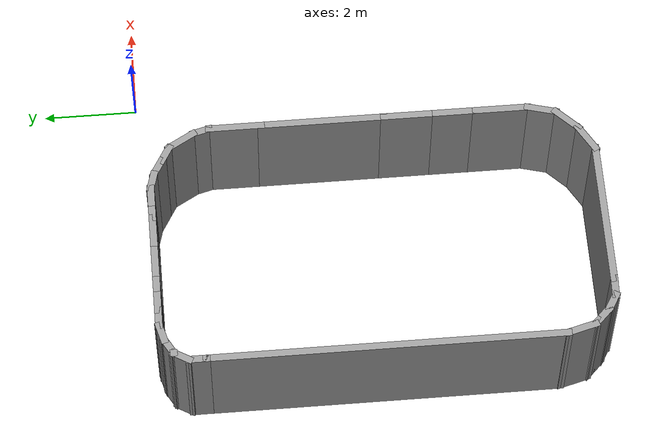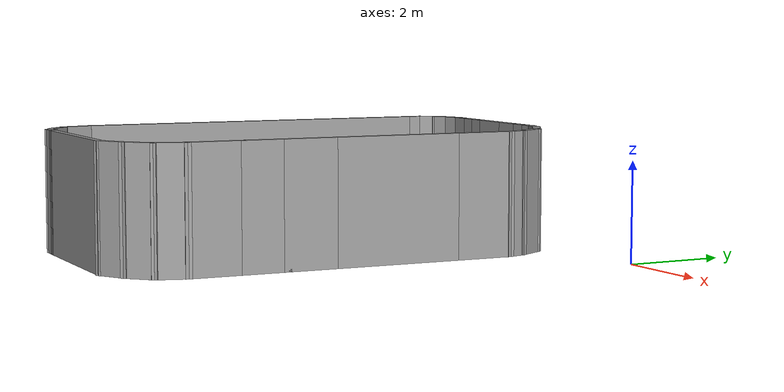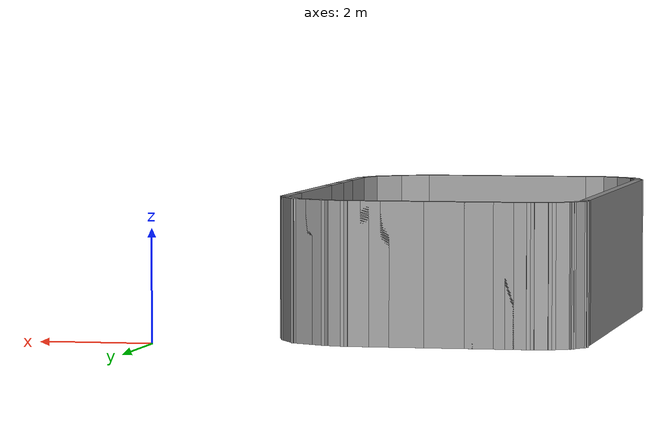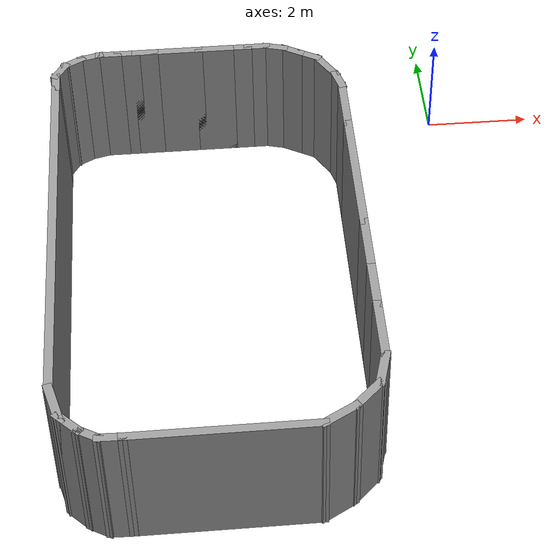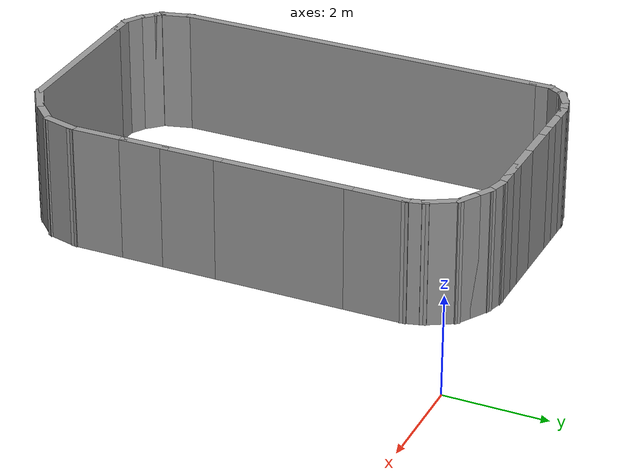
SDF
<?xml version='1.0'?>
<sdf version='1.7'>
  <model name='Untitled3'>
    <pose>-3.72977 -4.86258 0 0 -0 0</pose>
    <link name='Wall_100'>
      <collision name='Wall_100_Collision'>
        <geometry>
          <box>
            <size>0.5 0.15 2.5</size>
          </box>
        </geometry>
        <pose>0 0 1.25 0 -0 0</pose>
      </collision>
      <visual name='Wall_100_Visual'>
        <pose>0 0 1.25 0 -0 0</pose>
        <geometry>
          <box>
            <size>0.5 0.15 2.5</size>
          </box>
        </geometry>
        <material>
          <script>
            <uri>file://media/materials/scripts/gazebo.material</uri>
            <name>Gazebo/Grey</name>
          </script>
          <ambient>1 1 1 1</ambient>
        </material>
        <meta>
          <layer>0</layer>
        </meta>
      </visual>
      <pose>-3.00228 -4.66198 0 0 -0 -0.523599</pose>
    </link>
    <link name='Wall_101'>
      <collision name='Wall_101_Collision'>
        <geometry>
          <box>
            <size>0.525443 0.15 2.5</size>
          </box>
        </geometry>
        <pose>0 0 1.25 0 -0 0</pose>
      </collision>
      <visual name='Wall_101_Visual'>
        <pose>0 0 1.25 0 -0 0</pose>
        <geometry>
          <box>
            <size>0.525443 0.15 2.5</size>
          </box>
        </geometry>
        <material>
          <script>
            <uri>file://media/materials/scripts/gazebo.material</uri>
            <name>Gazebo/Grey</name>
          </script>
          <ambient>1 1 1 1</ambient>
        </material>
        <meta>
          <layer>0</layer>
        </meta>
      </visual>
      <pose>-2.66308 -4.7548 0 0 -0 -0.028361</pose>
    </link>
    <link name='Wall_60'>
      <collision name='Wall_60_Collision'>
        <geometry>
          <box>
            <size>3.25 0.15 2.5</size>
          </box>
        </geometry>
        <pose>0 0 1.25 0 -0 0</pose>
      </collision>
      <visual name='Wall_60_Visual'>
        <pose>0 0 1.25 0 -0 0</pose>
        <geometry>
          <box>
            <size>3.25 0.15 2.5</size>
          </box>
        </geometry>
        <material>
          <script>
            <uri>file://media/materials/scripts/gazebo.material</uri>
            <name>Gazebo/Grey</name>
          </script>
          <ambient>1 1 1 1</ambient>
        </material>
        <meta>
          <layer>0</layer>
        </meta>
      </visual>
      <pose>-0.925431 -4.76012 0 0 -0 0</pose>
    </link>
    <link name='Wall_62'>
      <collision name='Wall_62_Collision'>
        <geometry>
          <box>
            <size>0.75 0.15 2.5</size>
          </box>
        </geometry>
        <pose>0 0 1.25 0 -0 0</pose>
      </collision>
      <visual name='Wall_62_Visual'>
        <pose>0 0 1.25 0 -0 0</pose>
        <geometry>
          <box>
            <size>0.75 0.15 2.5</size>
          </box>
        </geometry>
        <material>
          <script>
            <uri>file://media/materials/scripts/gazebo.material</uri>
            <name>Gazebo/Grey</name>
          </script>
          <ambient>1 1 1 1</ambient>
        </material>
        <meta>
          <layer>0</layer>
        </meta>
      </visual>
      <pose>0.884377 -4.61012 0 0 -0 0.523599</pose>
    </link>
    <link name='Wall_63'>
      <collision name='Wall_63_Collision'>
        <geometry>
          <box>
            <size>0.75 0.15 2.5</size>
          </box>
        </geometry>
        <pose>0 0 1.25 0 -0 0</pose>
      </collision>
      <visual name='Wall_63_Visual'>
        <pose>0 0 1.25 0 -0 0</pose>
        <geometry>
          <box>
            <size>0.75 0.15 2.5</size>
          </box>
        </geometry>
        <material>
          <script>
            <uri>file://media/materials/scripts/gazebo.material</uri>
            <name>Gazebo/Grey</name>
          </script>
          <ambient>1 1 1 1</ambient>
        </material>
        <meta>
          <layer>0</layer>
        </meta>
      </visual>
      <pose>1.35632 -4.24799 0 0 -0 0.785398</pose>
    </link>
    <link name='Wall_64'>
      <collision name='Wall_64_Collision'>
        <geometry>
          <box>
            <size>0.75 0.15 2.5</size>
          </box>
        </geometry>
        <pose>0 0 1.25 0 -0 0</pose>
      </collision>
      <visual name='Wall_64_Visual'>
        <pose>0 0 1.25 0 -0 0</pose>
        <geometry>
          <box>
            <size>0.75 0.15 2.5</size>
          </box>
        </geometry>
        <material>
          <script>
            <uri>file://media/materials/scripts/gazebo.material</uri>
            <name>Gazebo/Grey</name>
          </script>
          <ambient>1 1 1 1</ambient>
        </material>
        <meta>
          <layer>0</layer>
        </meta>
      </visual>
      <pose>1.64609 -3.74608 0 0 -0 1.309</pose>
    </link>
    <link name='Wall_65'>
      <collision name='Wall_65_Collision'>
        <geometry>
          <box>
            <size>1.25 0.15 2.5</size>
          </box>
        </geometry>
        <pose>0 0 1.25 0 -0 0</pose>
      </collision>
      <visual name='Wall_65_Visual'>
        <pose>0 0 1.25 0 -0 0</pose>
        <geometry>
          <box>
            <size>1.25 0.15 2.5</size>
          </box>
        </geometry>
        <material>
          <script>
            <uri>file://media/materials/scripts/gazebo.material</uri>
            <name>Gazebo/Grey</name>
          </script>
          <ambient>1 1 1 1</ambient>
        </material>
        <meta>
          <layer>0</layer>
        </meta>
      </visual>
      <pose>1.72374 -2.9063 0 0 -0 1.5708</pose>
    </link>
    <link name='Wall_66'>
      <collision name='Wall_66_Collision'>
        <geometry>
          <box>
            <size>0.15 0.15 2.5</size>
          </box>
        </geometry>
        <pose>0 0 1.25 0 -0 0</pose>
      </collision>
      <visual name='Wall_66_Visual'>
        <pose>0 0 1.25 0 -0 0</pose>
        <geometry>
          <box>
            <size>0.15 0.15 2.5</size>
          </box>
        </geometry>
        <material>
          <script>
            <uri>file://media/materials/scripts/gazebo.material</uri>
            <name>Gazebo/Grey</name>
          </script>
          <ambient>1 1 1 1</ambient>
        </material>
        <meta>
          <layer>0</layer>
        </meta>
      </visual>
      <pose>1.72374 -2.3563 0 0 -0 0</pose>
    </link>
    <link name='Wall_71'>
      <collision name='Wall_71_Collision'>
        <geometry>
          <box>
            <size>1 0.15 2.5</size>
          </box>
        </geometry>
        <pose>0 0 1.25 0 -0 0</pose>
      </collision>
      <visual name='Wall_71_Visual'>
        <pose>0 0 1.25 0 -0 0</pose>
        <geometry>
          <box>
            <size>1 0.15 2.5</size>
          </box>
        </geometry>
        <material>
          <script>
            <uri>file://media/materials/scripts/gazebo.material</uri>
            <name>Gazebo/Grey</name>
          </script>
          <ambient>1 1 1 1</ambient>
        </material>
        <meta>
          <layer>0</layer>
        </meta>
      </visual>
      <pose>1.72374 -1.9313 0 0 -0 1.5708</pose>
    </link>
    <link name='Wall_72'>
      <collision name='Wall_72_Collision'>
        <geometry>
          <box>
            <size>1.25 0.15 2.5</size>
          </box>
        </geometry>
        <pose>0 0 1.25 0 -0 0</pose>
      </collision>
      <visual name='Wall_72_Visual'>
        <pose>0 0 1.25 0 -0 0</pose>
        <geometry>
          <box>
            <size>1.25 0.15 2.5</size>
          </box>
        </geometry>
        <material>
          <script>
            <uri>file://media/materials/scripts/gazebo.material</uri>
            <name>Gazebo/Grey</name>
          </script>
          <ambient>1 1 1 1</ambient>
        </material>
        <meta>
          <layer>0</layer>
        </meta>
      </visual>
      <pose>1.72374 -0.956304 0 0 -0 1.5708</pose>
    </link>
    <link name='Wall_73'>
      <collision name='Wall_73_Collision'>
        <geometry>
          <box>
            <size>2.75 0.15 2.5</size>
          </box>
        </geometry>
        <pose>0 0 1.25 0 -0 0</pose>
      </collision>
      <visual name='Wall_73_Visual'>
        <pose>0 0 1.25 0 -0 0</pose>
        <geometry>
          <box>
            <size>2.75 0.15 2.5</size>
          </box>
        </geometry>
        <material>
          <script>
            <uri>file://media/materials/scripts/gazebo.material</uri>
            <name>Gazebo/Grey</name>
          </script>
          <ambient>1 1 1 1</ambient>
        </material>
        <meta>
          <layer>0</layer>
        </meta>
      </visual>
      <pose>1.72374 0.893696 0 0 -0 1.5708</pose>
    </link>
    <link name='Wall_74'>
      <collision name='Wall_74_Collision'>
        <geometry>
          <box>
            <size>1.25 0.15 2.5</size>
          </box>
        </geometry>
        <pose>0 0 1.25 0 -0 0</pose>
      </collision>
      <visual name='Wall_74_Visual'>
        <pose>0 0 1.25 0 -0 0</pose>
        <geometry>
          <box>
            <size>1.25 0.15 2.5</size>
          </box>
        </geometry>
        <material>
          <script>
            <uri>file://media/materials/scripts/gazebo.material</uri>
            <name>Gazebo/Grey</name>
          </script>
          <ambient>1 1 1 1</ambient>
        </material>
        <meta>
          <layer>0</layer>
        </meta>
      </visual>
      <pose>1.72374 2.7437 0 0 -0 1.5708</pose>
    </link>
    <link name='Wall_75'>
      <collision name='Wall_75_Collision'>
        <geometry>
          <box>
            <size>0.5 0.15 2.5</size>
          </box>
        </geometry>
        <pose>0 0 1.25 0 -0 0</pose>
      </collision>
      <visual name='Wall_75_Visual'>
        <pose>0 0 1.25 0 -0 0</pose>
        <geometry>
          <box>
            <size>0.5 0.15 2.5</size>
          </box>
        </geometry>
        <material>
          <script>
            <uri>file://media/materials/scripts/gazebo.material</uri>
            <name>Gazebo/Grey</name>
          </script>
          <ambient>1 1 1 1</ambient>
        </material>
        <meta>
          <layer>0</layer>
        </meta>
      </visual>
      <pose>1.67845 3.46273 0 0 -0 1.8326</pose>
    </link>
    <link name='Wall_76'>
      <collision name='Wall_76_Collision'>
        <geometry>
          <box>
            <size>0.75 0.15 2.5</size>
          </box>
        </geometry>
        <pose>0 0 1.25 0 -0 0</pose>
      </collision>
      <visual name='Wall_76_Visual'>
        <pose>0 0 1.25 0 -0 0</pose>
        <geometry>
          <box>
            <size>0.75 0.15 2.5</size>
          </box>
        </geometry>
        <material>
          <script>
            <uri>file://media/materials/scripts/gazebo.material</uri>
            <name>Gazebo/Grey</name>
          </script>
          <ambient>1 1 1 1</ambient>
        </material>
        <meta>
          <layer>0</layer>
        </meta>
      </visual>
      <pose>1.48315 3.89158 0 0 -0 2.0944</pose>
    </link>
    <link name='Wall_77'>
      <collision name='Wall_77_Collision'>
        <geometry>
          <box>
            <size>0.5 0.15 2.5</size>
          </box>
        </geometry>
        <pose>0 0 1.25 0 -0 0</pose>
      </collision>
      <visual name='Wall_77_Visual'>
        <pose>0 0 1.25 0 -0 0</pose>
        <geometry>
          <box>
            <size>0.5 0.15 2.5</size>
          </box>
        </geometry>
        <material>
          <script>
            <uri>file://media/materials/scripts/gazebo.material</uri>
            <name>Gazebo/Grey</name>
          </script>
          <ambient>1 1 1 1</ambient>
        </material>
        <meta>
          <layer>0</layer>
        </meta>
      </visual>
      <pose>1.1816 4.23888 0 0 -0 2.61799</pose>
    </link>
    <link name='Wall_78'>
      <collision name='Wall_78_Collision'>
        <geometry>
          <box>
            <size>0.5 0.15 2.5</size>
          </box>
        </geometry>
        <pose>0 0 1.25 0 -0 0</pose>
      </collision>
      <visual name='Wall_78_Visual'>
        <pose>0 0 1.25 0 -0 0</pose>
        <geometry>
          <box>
            <size>0.5 0.15 2.5</size>
          </box>
        </geometry>
        <material>
          <script>
            <uri>file://media/materials/scripts/gazebo.material</uri>
            <name>Gazebo/Grey</name>
          </script>
          <ambient>1 1 1 1</ambient>
        </material>
        <meta>
          <layer>0</layer>
        </meta>
      </visual>
      <pose>0.87849 4.41388 0 0 -0 2.61799</pose>
    </link>
    <link name='Wall_79'>
      <collision name='Wall_79_Collision'>
        <geometry>
          <box>
            <size>0.5 0.15 2.5</size>
          </box>
        </geometry>
        <pose>0 0 1.25 0 -0 0</pose>
      </collision>
      <visual name='Wall_79_Visual'>
        <pose>0 0 1.25 0 -0 0</pose>
        <geometry>
          <box>
            <size>0.5 0.15 2.5</size>
          </box>
        </geometry>
        <material>
          <script>
            <uri>file://media/materials/scripts/gazebo.material</uri>
            <name>Gazebo/Grey</name>
          </script>
          <ambient>1 1 1 1</ambient>
        </material>
        <meta>
          <layer>0</layer>
        </meta>
      </visual>
      <pose>0.557899 4.54668 0 0 -0 2.87979</pose>
    </link>
    <link name='Wall_80'>
      <collision name='Wall_80_Collision'>
        <geometry>
          <box>
            <size>0.5 0.15 2.5</size>
          </box>
        </geometry>
        <pose>0 0 1.25 0 -0 0</pose>
      </collision>
      <visual name='Wall_80_Visual'>
        <pose>0 0 1.25 0 -0 0</pose>
        <geometry>
          <box>
            <size>0.5 0.15 2.5</size>
          </box>
        </geometry>
        <material>
          <script>
            <uri>file://media/materials/scripts/gazebo.material</uri>
            <name>Gazebo/Grey</name>
          </script>
          <ambient>1 1 1 1</ambient>
        </material>
        <meta>
          <layer>0</layer>
        </meta>
      </visual>
      <pose>0.213862 4.59197 0 0 -0 3.14159</pose>
    </link>
    <link name='Wall_81'>
      <collision name='Wall_81_Collision'>
        <geometry>
          <box>
            <size>0.5 0.15 2.5</size>
          </box>
        </geometry>
        <pose>0 0 1.25 0 -0 0</pose>
      </collision>
      <visual name='Wall_81_Visual'>
        <pose>0 0 1.25 0 -0 0</pose>
        <geometry>
          <box>
            <size>0.5 0.15 2.5</size>
          </box>
        </geometry>
        <material>
          <script>
            <uri>file://media/materials/scripts/gazebo.material</uri>
            <name>Gazebo/Grey</name>
          </script>
          <ambient>1 1 1 1</ambient>
        </material>
        <meta>
          <layer>0</layer>
        </meta>
      </visual>
      <pose>-0.136138 4.59197 0 0 -0 3.14159</pose>
    </link>
    <link name='Wall_84'>
      <collision name='Wall_84_Collision'>
        <geometry>
          <box>
            <size>0.75 0.15 2.5</size>
          </box>
        </geometry>
        <pose>0 0 1.25 0 -0 0</pose>
      </collision>
      <visual name='Wall_84_Visual'>
        <pose>0 0 1.25 0 -0 0</pose>
        <geometry>
          <box>
            <size>0.75 0.15 2.5</size>
          </box>
        </geometry>
        <material>
          <script>
            <uri>file://media/materials/scripts/gazebo.material</uri>
            <name>Gazebo/Grey</name>
          </script>
          <ambient>1 1 1 1</ambient>
        </material>
        <meta>
          <layer>0</layer>
        </meta>
      </visual>
      <pose>-0.611139 4.59197 0 0 -0 3.14159</pose>
    </link>
    <link name='Wall_85'>
      <collision name='Wall_85_Collision'>
        <geometry>
          <box>
            <size>1 0.15 2.5</size>
          </box>
        </geometry>
        <pose>0 0 1.25 0 -0 0</pose>
      </collision>
      <visual name='Wall_85_Visual'>
        <pose>0 0 1.25 0 -0 0</pose>
        <geometry>
          <box>
            <size>1 0.15 2.5</size>
          </box>
        </geometry>
        <material>
          <script>
            <uri>file://media/materials/scripts/gazebo.material</uri>
            <name>Gazebo/Grey</name>
          </script>
          <ambient>1 1 1 1</ambient>
        </material>
        <meta>
          <layer>0</layer>
        </meta>
      </visual>
      <pose>-1.33614 4.59197 0 0 -0 3.14159</pose>
    </link>
    <link name='Wall_86'>
      <collision name='Wall_86_Collision'>
        <geometry>
          <box>
            <size>0.5 0.15 2.5</size>
          </box>
        </geometry>
        <pose>0 0 1.25 0 -0 0</pose>
      </collision>
      <visual name='Wall_86_Visual'>
        <pose>0 0 1.25 0 -0 0</pose>
        <geometry>
          <box>
            <size>0.5 0.15 2.5</size>
          </box>
        </geometry>
        <material>
          <script>
            <uri>file://media/materials/scripts/gazebo.material</uri>
            <name>Gazebo/Grey</name>
          </script>
          <ambient>1 1 1 1</ambient>
        </material>
        <meta>
          <layer>0</layer>
        </meta>
      </visual>
      <pose>-1.93614 4.59197 0 0 -0 3.14159</pose>
    </link>
    <link name='Wall_87'>
      <collision name='Wall_87_Collision'>
        <geometry>
          <box>
            <size>0.5 0.15 2.5</size>
          </box>
        </geometry>
        <pose>0 0 1.25 0 -0 0</pose>
      </collision>
      <visual name='Wall_87_Visual'>
        <pose>0 0 1.25 0 -0 0</pose>
        <geometry>
          <box>
            <size>0.5 0.15 2.5</size>
          </box>
        </geometry>
        <material>
          <script>
            <uri>file://media/materials/scripts/gazebo.material</uri>
            <name>Gazebo/Grey</name>
          </script>
          <ambient>1 1 1 1</ambient>
        </material>
        <meta>
          <layer>0</layer>
        </meta>
      </visual>
      <pose>-2.28614 4.59197 0 0 -0 3.14159</pose>
    </link>
    <link name='Wall_88'>
      <collision name='Wall_88_Collision'>
        <geometry>
          <box>
            <size>0.5 0.15 2.5</size>
          </box>
        </geometry>
        <pose>0 0 1.25 0 -0 0</pose>
      </collision>
      <visual name='Wall_88_Visual'>
        <pose>0 0 1.25 0 -0 0</pose>
        <geometry>
          <box>
            <size>0.5 0.15 2.5</size>
          </box>
        </geometry>
        <material>
          <script>
            <uri>file://media/materials/scripts/gazebo.material</uri>
            <name>Gazebo/Grey</name>
          </script>
          <ambient>1 1 1 1</ambient>
        </material>
        <meta>
          <layer>0</layer>
        </meta>
      </visual>
      <pose>-2.63614 4.59197 0 0 -0 3.14159</pose>
    </link>
    <link name='Wall_89'>
      <collision name='Wall_89_Collision'>
        <geometry>
          <box>
            <size>0.5 0.15 2.5</size>
          </box>
        </geometry>
        <pose>0 0 1.25 0 -0 0</pose>
      </collision>
      <visual name='Wall_89_Visual'>
        <pose>0 0 1.25 0 -0 0</pose>
        <geometry>
          <box>
            <size>0.5 0.15 2.5</size>
          </box>
        </geometry>
        <material>
          <script>
            <uri>file://media/materials/scripts/gazebo.material</uri>
            <name>Gazebo/Grey</name>
          </script>
          <ambient>1 1 1 1</ambient>
        </material>
        <meta>
          <layer>0</layer>
        </meta>
      </visual>
      <pose>-2.98018 4.54668 0 0 -0 -2.87979</pose>
    </link>
    <link name='Wall_90'>
      <collision name='Wall_90_Collision'>
        <geometry>
          <box>
            <size>0.5 0.15 2.5</size>
          </box>
        </geometry>
        <pose>0 0 1.25 0 -0 0</pose>
      </collision>
      <visual name='Wall_90_Visual'>
        <pose>0 0 1.25 0 -0 0</pose>
        <geometry>
          <box>
            <size>0.5 0.15 2.5</size>
          </box>
        </geometry>
        <material>
          <script>
            <uri>file://media/materials/scripts/gazebo.material</uri>
            <name>Gazebo/Grey</name>
          </script>
          <ambient>1 1 1 1</ambient>
        </material>
        <meta>
          <layer>0</layer>
        </meta>
      </visual>
      <pose>-3.30077 4.41388 0 0 -0 -2.61799</pose>
    </link>
    <link name='Wall_91'>
      <collision name='Wall_91_Collision'>
        <geometry>
          <box>
            <size>0.15 0.15 2.5</size>
          </box>
        </geometry>
        <pose>0 0 1.25 0 -0 0</pose>
      </collision>
      <visual name='Wall_91_Visual'>
        <pose>0 0 1.25 0 -0 0</pose>
        <geometry>
          <box>
            <size>0.15 0.15 2.5</size>
          </box>
        </geometry>
        <material>
          <script>
            <uri>file://media/materials/scripts/gazebo.material</uri>
            <name>Gazebo/Grey</name>
          </script>
          <ambient>1 1 1 1</ambient>
        </material>
        <meta>
          <layer>0</layer>
        </meta>
      </visual>
      <pose>-3.45232 4.32639 0 0 -0 0</pose>
    </link>
    <link name='Wall_92'>
      <collision name='Wall_92_Collision'>
        <geometry>
          <box>
            <size>0.5 0.15 2.5</size>
          </box>
        </geometry>
        <pose>0 0 1.25 0 -0 0</pose>
      </collision>
      <visual name='Wall_92_Visual'>
        <pose>0 0 1.25 0 -0 0</pose>
        <geometry>
          <box>
            <size>0.5 0.15 2.5</size>
          </box>
        </geometry>
        <material>
          <script>
            <uri>file://media/materials/scripts/gazebo.material</uri>
            <name>Gazebo/Grey</name>
          </script>
          <ambient>1 1 1 1</ambient>
        </material>
        <meta>
          <layer>0</layer>
        </meta>
      </visual>
      <pose>-3.53982 4.17483 0 0 -0 -2.0944</pose>
    </link>
    <link name='Wall_93'>
      <collision name='Wall_93_Collision'>
        <geometry>
          <box>
            <size>0.5 0.15 2.5</size>
          </box>
        </geometry>
        <pose>0 0 1.25 0 -0 0</pose>
      </collision>
      <visual name='Wall_93_Visual'>
        <pose>0 0 1.25 0 -0 0</pose>
        <geometry>
          <box>
            <size>0.5 0.15 2.5</size>
          </box>
        </geometry>
        <material>
          <script>
            <uri>file://media/materials/scripts/gazebo.material</uri>
            <name>Gazebo/Grey</name>
          </script>
          <ambient>1 1 1 1</ambient>
        </material>
        <meta>
          <layer>0</layer>
        </meta>
      </visual>
      <pose>-3.62732 3.84828 0 0 -0 -1.5708</pose>
    </link>
    <link name='Wall_96'>
      <collision name='Wall_96_Collision'>
        <geometry>
          <box>
            <size>7.5 0.15 2.5</size>
          </box>
        </geometry>
        <pose>0 0 1.25 0 -0 0</pose>
      </collision>
      <visual name='Wall_96_Visual'>
        <pose>0 0 1.25 0 -0 0</pose>
        <geometry>
          <box>
            <size>7.5 0.15 2.5</size>
          </box>
        </geometry>
        <material>
          <script>
            <uri>file://media/materials/scripts/gazebo.material</uri>
            <name>Gazebo/Grey</name>
          </script>
          <ambient>1 1 1 1</ambient>
        </material>
        <meta>
          <layer>0</layer>
        </meta>
      </visual>
      <pose>-3.62732 -0.001724 0 0 -0 -1.5708</pose>
    </link>
    <link name='Wall_97'>
      <collision name='Wall_97_Collision'>
        <geometry>
          <box>
            <size>0.75 0.15 2.5</size>
          </box>
        </geometry>
        <pose>0 0 1.25 0 -0 0</pose>
      </collision>
      <visual name='Wall_97_Visual'>
        <pose>0 0 1.25 0 -0 0</pose>
        <geometry>
          <box>
            <size>0.75 0.15 2.5</size>
          </box>
        </geometry>
        <material>
          <script>
            <uri>file://media/materials/scripts/gazebo.material</uri>
            <name>Gazebo/Grey</name>
          </script>
          <ambient>1 1 1 1</ambient>
        </material>
        <meta>
          <layer>0</layer>
        </meta>
      </visual>
      <pose>-3.54968 -3.9665 0 0 -0 -1.309</pose>
    </link>
    <link name='Wall_98'>
      <collision name='Wall_98_Collision'>
        <geometry>
          <box>
            <size>0.25 0.15 2.5</size>
          </box>
        </geometry>
        <pose>0 0 1.25 0 -0 0</pose>
      </collision>
      <visual name='Wall_98_Visual'>
        <pose>0 0 1.25 0 -0 0</pose>
        <geometry>
          <box>
            <size>0.25 0.15 2.5</size>
          </box>
        </geometry>
        <material>
          <script>
            <uri>file://media/materials/scripts/gazebo.material</uri>
            <name>Gazebo/Grey</name>
          </script>
          <ambient>1 1 1 1</ambient>
        </material>
        <meta>
          <layer>0</layer>
        </meta>
      </visual>
      <pose>-3.43667 -4.29164 0 0 -0 -0.785398</pose>
    </link>
    <link name='Wall_99'>
      <collision name='Wall_99_Collision'>
        <geometry>
          <box>
            <size>0.5 0.15 2.5</size>
          </box>
        </geometry>
        <pose>0 0 1.25 0 -0 0</pose>
      </collision>
      <visual name='Wall_99_Visual'>
        <pose>0 0 1.25 0 -0 0</pose>
        <geometry>
          <box>
            <size>0.5 0.15 2.5</size>
          </box>
        </geometry>
        <material>
          <script>
            <uri>file://media/materials/scripts/gazebo.material</uri>
            <name>Gazebo/Grey</name>
          </script>
          <ambient>1 1 1 1</ambient>
        </material>
        <meta>
          <layer>0</layer>
        </meta>
      </visual>
      <pose>-3.27758 -4.45073 0 0 -0 -0.785398</pose>
    </link>
    <static>1</static>
  </model>
</sdf>
